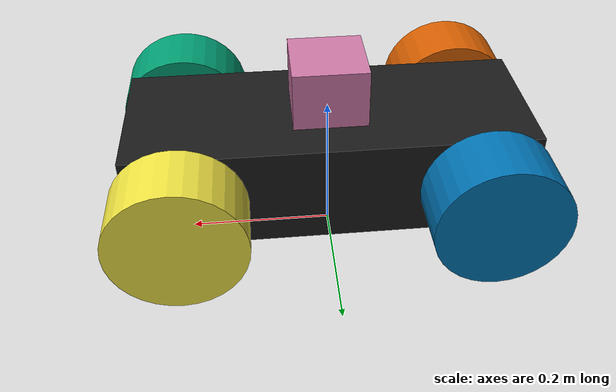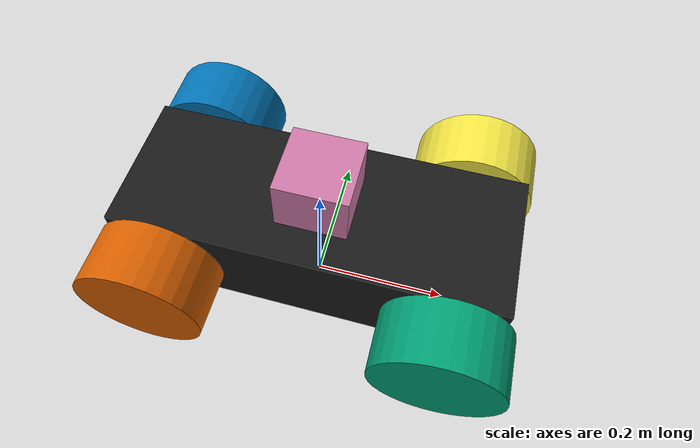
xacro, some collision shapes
<?xml version="1.0"?>

<robot name="summit_xl" xmlns:xacro="http://www.ros.org/wiki/xacro">

	<!-- Import summit XL wheels -->
	<xacro:include filename="$(find summit_description)/urdf/wheels/omni_wheel.urdf.xacro" />
	<xacro:include filename="$(find summit_description)/urdf/lidar/lidar_wheel.urdf.xacro" />
	<xacro:include filename="$(find summit_description)/urdf/base/summit_base.urdf.xacro" />

	<!-- Wheel parameters -->
	<xacro:property name="wheel_offset_x" value="0.2025" />    <!-- x,y,z in translation from base_link to the center of the wheel -->
	<xacro:property name="wheel_offset_y" value="0.150" />
	<xacro:property name="wheel_offset_z" value="0.0" />

	<xacro:macro name="robot">
		<xacro:summit_base/>

		<xacro:omni_wheel prefix="summit_front_right" parent="summit_base_link" reflect="false">
			<origin xyz="${wheel_offset_x} -${wheel_offset_y} ${wheel_offset_z}" rpy="0 0 0"/>
		</xacro:omni_wheel>

		<xacro:omni_wheel prefix="summit_front_left" parent="summit_base_link" reflect="true">
			<origin xyz="${wheel_offset_x} ${wheel_offset_y} ${wheel_offset_z}" rpy="0 0 0"/>
		</xacro:omni_wheel>

		<xacro:omni_wheel prefix="summit_back_left" parent="summit_base_link" reflect="true">
			<origin xyz="-${wheel_offset_x} ${wheel_offset_y} ${wheel_offset_z}" rpy="0 0 0"/>
		</xacro:omni_wheel>

		<xacro:omni_wheel prefix="summit_back_right" parent="summit_base_link" reflect="false">
			<origin xyz="-${wheel_offset_x} -${wheel_offset_y} ${wheel_offset_z}" rpy="0 0 0"/>
		</xacro:omni_wheel>
		<xacro:omni_steering/>
		<xacro:lidar parent="summit_base_link" height="0.1"/>

   </xacro:macro>

   <xacro:robot/>

</robot>

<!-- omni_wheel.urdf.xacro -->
<robot name="wheel" xmlns:xacro="http://www.ros.org/wiki/xacro">

  <xacro:property name="PI" value="3.1415926535897931" />

  <!-- Wheels -->
  <xacro:property name="wheel_radius" value="0.127" />
  <xacro:property name="wheel_height" value="0.087" />
  <xacro:property name="wheel_mass" value="6.5" /> <!-- in kg-->

  <xacro:macro name="cylinder_inertia" params="m r h">
    <inertia  ixx="${m*(3*r*r+h*h)/12}" ixy = "0" ixz = "0"
              iyy="${m*r*r/2}" iyz = "0"
              izz="${m*(3*r*r+h*h)/12}" />
  </xacro:macro>

  <xacro:macro name="omni_wheel" params="prefix parent *origin reflect">

    <joint name="${prefix}_wheel_joint" type="continuous">
      <parent link="${parent}"/>
      <child link="${prefix}_wheel_link"/>
      <xacro:insert_block name="origin" />
      <axis xyz="0 1 0" rpy="0 0 0" />
      <limit effort="100" velocity="100"/>
      <joint_properties damping="0.0" friction="0.0"/>
    </joint>

    <link name="${prefix}_wheel_link">
      <visual>
        <origin xyz="0 0 0" rpy="0 0 0" />
        <xacro:if value="${reflect}">
          <geometry>
            <mesh filename="package://summit_description/meshes/wheels/omni_wheel_1.1.dae" />
          </geometry>
          </xacro:if>
          <xacro:unless value="${reflect}">
            <geometry>
              <mesh filename="package://summit_description/meshes/wheels/omni_wheel_1.1.dae" />
            </geometry>
		    </xacro:unless>
      </visual>

      <collision>
				<origin xyz="0 0 0" rpy="${PI/2} 0 0" />
        <geometry>
					<cylinder length="${wheel_height}" radius="${wheel_radius}" />
        </geometry>
      </collision>

      <inertial>
        <mass value="${wheel_mass}" />
        <origin xyz="0 0 0" />
        <cylinder_inertia  m="${wheel_mass}" r="${wheel_radius}" h="${wheel_height}" />
      </inertial>
    </link>

    <!-- Transmission is important to link the joints and the controller (see summit_xl_control/config/summit_xl_control.yaml)-->
    <transmission name="${prefix}_wheel_joint_trans">
      <type>transmission_interface/SimpleTransmission</type>
      <joint name="${prefix}_wheel_joint" >
        <hardwareInterface>hardware_interface/VelocityJointInterface</hardwareInterface>
      </joint>
      <actuator name="${prefix}_wheel_joint_motor">
         <mechanicalReduction>1</mechanicalReduction>
      </actuator>
    </transmission>

    <gazebo reference="${prefix}_wheel_link">
		<mu1 value="1.0"/>
		<mu2 value="1.0"/>
		<kp value="10000000.0" />
		<kd value="1.0" />
		<fdir1 value="1 0 0"/>
        <turnGravityOff>false</turnGravityOff>
    </gazebo>

  </xacro:macro>
</robot>

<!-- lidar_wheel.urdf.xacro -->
<robot name="lidar" xmlns:xacro="http://www.ros.org/wiki/xacro">

<xacro:macro name="lidar" params="parent height" >

  <!-- hokoyu joint link using xacro like a function -->
    <joint name="hokuyo_joint" type="fixed">
    <axis xyz="0 1 0" />
    <origin xyz="0 0 ${height}" rpy="0 0 0"/>
    <parent link="${parent}"/>
    <child link="hokuyo_link"/>
  </joint>

  <!-- Hokuyo Laser : I have added the dae file tu suitable folder-->
  <link name="hokuyo_link">
    <collision>
      <origin xyz="0 0 0" rpy="0 0 0"/>
      <geometry>
    <box size="0.1 0.1 0.1"/>
      </geometry>
    </collision>

    <visual>
      <origin xyz="0 0 0" rpy="0 0 0"/>
      <geometry>
        <mesh filename="package://summit_description/meshes/lidar/hokuyo.dae"/>
      </geometry>
    </visual>

    <inertial>
      <mass value="1e-5" />
      <origin xyz="0 0 0" rpy="0 0 0"/>
      <inertia ixx="1e-6" ixy="0" ixz="0" iyy="1e-6" iyz="0" izz="1e-6" />
    </inertial>
  </link>

</xacro:macro>
</robot>

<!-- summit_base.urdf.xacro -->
<robot name="summit_xl" xmlns:xacro="http://www.ros.org/wiki/xacro">

  <xacro:macro name="summit_base">
    <xacro:include filename="$(find summit_description)/urdf/base/summit_base.gazebo.xacro"/>

	  <!-- Robot mechanical and motor parameters -->
	  <xacro:property name="PI" value="3.1415926535897931"/>
	  <xacro:property name="wheel_width" value="0.175" />

	<!-- BASE FOOTPRINT -->
		<link name="summit_base_footprint">
		  <visual>
			  <origin xyz="0 0 0" rpy="0 0 0" />
			  <geometry>
				 <box size="0.001 0.001 0.001" />
			  </geometry>
		  </visual>
		</link>

		<joint name="summit_base_footprint_joint" type="fixed">
		  <origin xyz="0 0 ${wheel_radius}" rpy="0 0 0" /> <!-- ${wheel_radius} property must be defined inside wheel description -->
		  <parent link="summit_base_footprint"/>
		  <child link="summit_base_link" />
		</joint>

  <!-- BASE_LINK -->
  <link name="summit_base_link">
    <inertial>
      <mass value="125.0" />
      <origin xyz="0 0 0" />
      <inertia  ixx="1.391" ixy="0.004"  ixz="0.0"  iyy="6.853"  iyz="0.0"  izz="6.125" />
    </inertial>

    <visual>
       <origin xyz="0 0 0" rpy="0 0 0" />

       <geometry>
	     <mesh filename="package://summit_description/meshes/base/summit_base2.dae"/>
       </geometry>

       <material name="darkgrey">
         <color rgba="0.1 0.1 0.1 1"/>
       </material>

    </visual>

    <collision>
       <origin xyz="0 0 0" rpy="0 0 0 " />
       <geometry>
         <mesh filename="package://summit_description/meshes/base/summit_base2.dae"/>
       </geometry>
    </collision>

  </link>

  </xacro:macro>

</robot>
